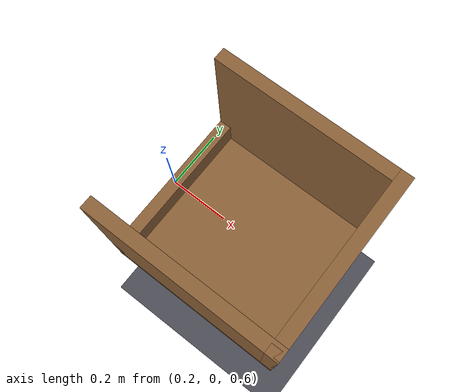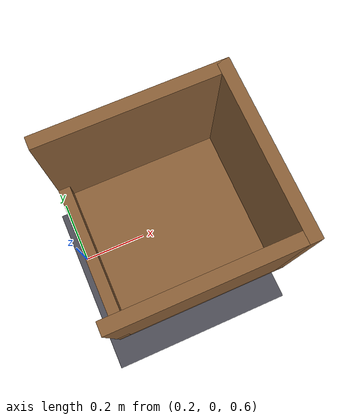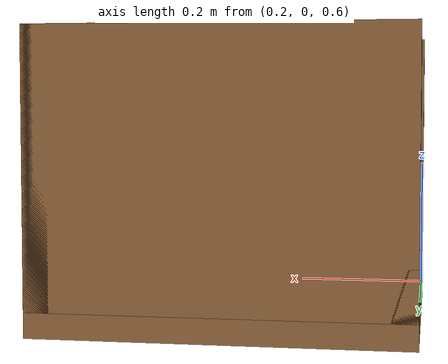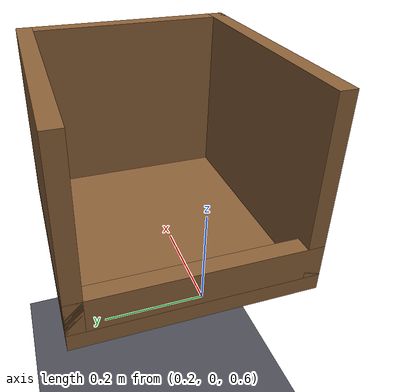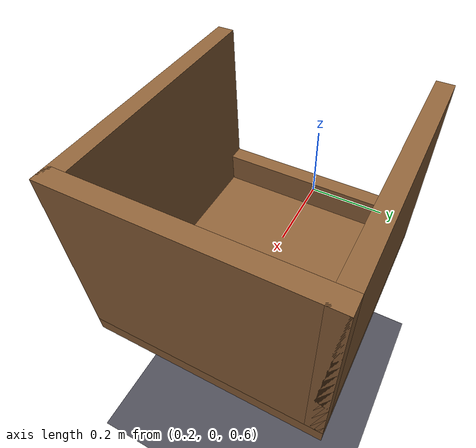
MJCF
<mujoco model="cabinet_cavity">
  <compiler angle="radian" autolimits="true" boundmass="0" balanceinertia="true"/>
  <option impratio="10" gravity="0 0 -9.8" integrator="implicitfast" cone="elliptic" jacobian="sparse" noslip_iterations="4">
    <flag multiccd="enable" contact="enable" warmstart="enable"/>
  </option>
  <size njmax="5000" nconmax="5000"/>
  <visual>
    <global offwidth="1280" offheight="720"/>
    <map znear="0.001"/>
    <headlight ambient="0.45 0.45 0.45" diffuse="0.6 0.6 0.6"/>
  </visual>
  <default>
    <default class="cavity_struct">
      <geom contype="8" conaffinity="15" group="0" friction="0.9 0.9 0.001"
            solref="0.02 1" solimp="0.998 0.998 0.001" density="800" rgba="0.55 0.38 0.22 1"/>
    </default>
  </default>
  <worldbody>
    <light pos="0.5 0.5 3" dir="0 0 -1" diffuse="0.7 0.7 0.7"/>
    <geom name="floor" type="plane" size="5 5 0.1" pos="0 0 0" rgba="0.3 0.3 0.34 1"/>
    <body name="cabinet" pos="0.5 0 0.8">
      <geom name="cab_bottom" class="cavity_struct" type="box" pos="0 0 -0.24" size="0.30 0.28 0.02"/>
      <geom name="cab_back"   class="cavity_struct" type="box" pos="0.28 0 0"   size="0.02 0.28 0.22"/>
      <geom name="cab_left"   class="cavity_struct" type="box" pos="0 0.26 0"    size="0.30 0.02 0.22"/>
      <geom name="cab_right"  class="cavity_struct" type="box" pos="0 -0.26 0"   size="0.30 0.02 0.22"/>
      <!-- low front lip so objects don't roll out the open front; arm reaches in above it -->
      <geom name="cab_front"  class="cavity_struct" type="box" pos="-0.28 0 -0.18" size="0.02 0.28 0.04"/>
    </body>
  </worldbody>
</mujoco>
